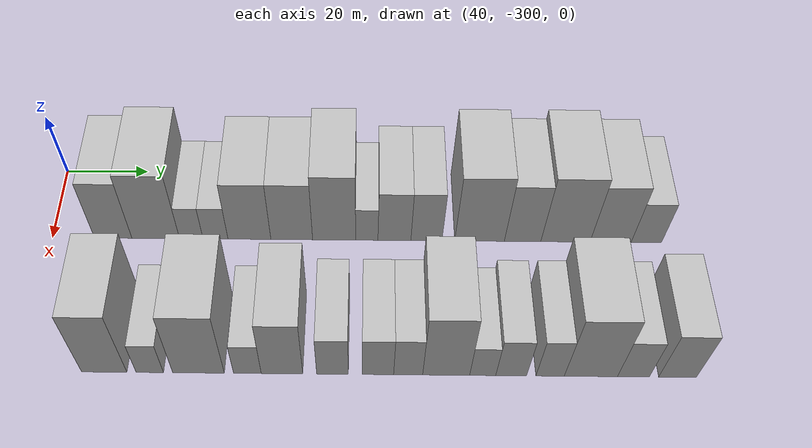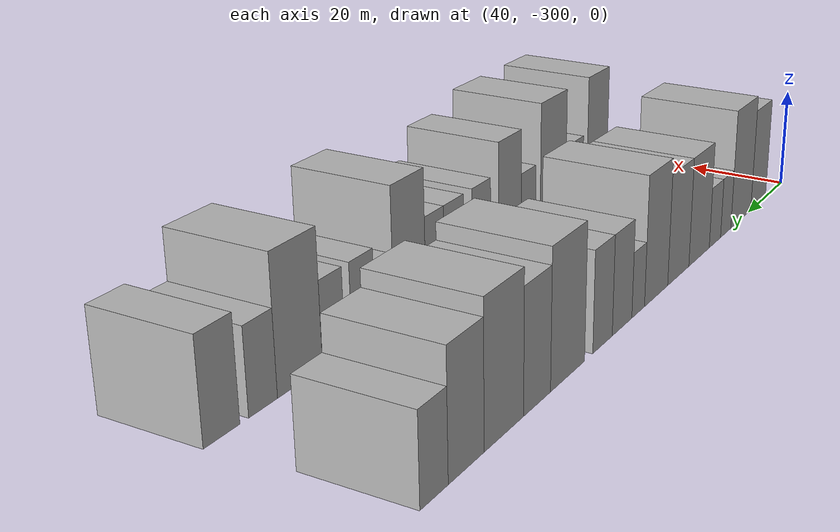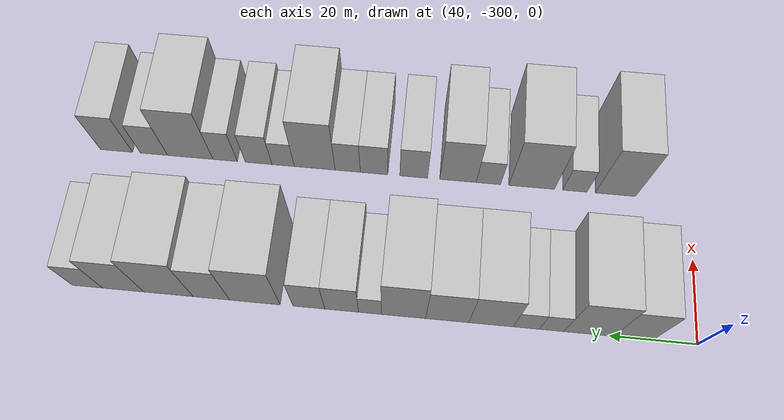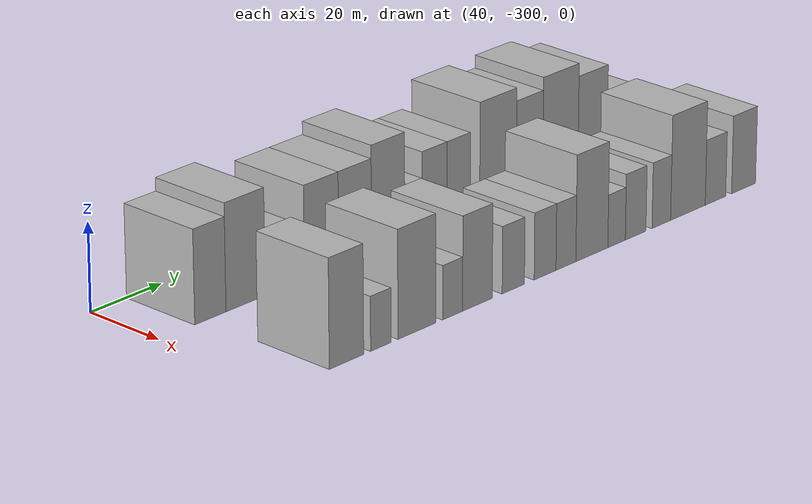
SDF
<sdf version="1.6">
 <world name="default">
  <model name="building_1">
   <static>1</static>
   <pose>50.0000 -285.5545 0 0.000000 0.000000 0.000000</pose>
   <link name="link">
    <pose>0 0 10.50 0 0 0</pose>
    <collision name="collision"><geometry><box><size>20.0000 8.8911 21.0000</size></box></geometry></collision>
    <visual name="visual">
     <cast_shadows>0</cast_shadows>
     <geometry><box><size>20.0000 8.8911 21.0000</size></box></geometry>
     <material>
      <script>
       <uri>model://HANNAS_wall/materials/scripts</uri>
       <uri>model://HANNAS_wall/materials/textures</uri>
       <name>vrc/HANNAS_wall</name>
      </script>
     </material>
    </visual>
   </link>
  </model>
  <model name="building_2">
   <static>1</static>
   <pose>50.0000 -275.4508 0 0.000000 0.000000 0.000000</pose>
   <link name="link">
    <pose>0 0 12.00 0 0 0</pose>
    <collision name="collision"><geometry><box><size>20.0000 11.3163 24.0000</size></box></geometry></collision>
    <visual name="visual">
     <cast_shadows>0</cast_shadows>
     <geometry><box><size>20.0000 11.3163 24.0000</size></box></geometry>
     <material>
      <script>
       <uri>model://HANNAS_wall/materials/scripts</uri>
       <uri>model://HANNAS_wall/materials/textures</uri>
       <name>vrc/HANNAS_wall</name>
      </script>
     </material>
    </visual>
   </link>
  </model>
  <model name="building_3">
   <static>1</static>
   <pose>50.0000 -267.0089 0 0.000000 0.000000 0.000000</pose>
   <link name="link">
    <pose>0 0 6.00 0 0 0</pose>
    <collision name="collision"><geometry><box><size>20.0000 5.5675 12.0000</size></box></geometry></collision>
    <visual name="visual">
     <cast_shadows>0</cast_shadows>
     <geometry><box><size>20.0000 5.5675 12.0000</size></box></geometry>
     <material>
      <script>
       <uri>model://HANNAS_wall/materials/scripts</uri>
       <uri>model://HANNAS_wall/materials/textures</uri>
       <name>vrc/HANNAS_wall</name>
      </script>
     </material>
    </visual>
   </link>
  </model>
  <model name="building_4">
   <static>1</static>
   <pose>50.0000 -261.2701 0 0.000000 0.000000 0.000000</pose>
   <link name="link">
    <pose>0 0 6.00 0 0 0</pose>
    <collision name="collision"><geometry><box><size>20.0000 5.9101 12.0000</size></box></geometry></collision>
    <visual name="visual">
     <cast_shadows>0</cast_shadows>
     <geometry><box><size>20.0000 5.9101 12.0000</size></box></geometry>
     <material>
      <script>
       <uri>model://HANNAS_wall/materials/scripts</uri>
       <uri>model://HANNAS_wall/materials/textures</uri>
       <name>vrc/HANNAS_wall</name>
      </script>
     </material>
    </visual>
   </link>
  </model>
  <model name="building_5">
   <static>1</static>
   <pose>50.0000 -253.2307 0 0.000000 0.000000 0.000000</pose>
   <link name="link">
    <pose>0 0 10.50 0 0 0</pose>
    <collision name="collision"><geometry><box><size>20.0000 10.1686 21.0000</size></box></geometry></collision>
    <visual name="visual">
     <cast_shadows>0</cast_shadows>
     <geometry><box><size>20.0000 10.1686 21.0000</size></box></geometry>
     <material>
      <script>
       <uri>model://HANNAS_wall/materials/scripts</uri>
       <uri>model://HANNAS_wall/materials/textures</uri>
       <name>vrc/HANNAS_wall</name>
      </script>
     </material>
    </visual>
   </link>
  </model>
  <model name="building_6">
   <static>1</static>
   <pose>50.0000 -243.1957 0 0.000000 0.000000 0.000000</pose>
   <link name="link">
    <pose>0 0 10.50 0 0 0</pose>
    <collision name="collision"><geometry><box><size>20.0000 9.9014 21.0000</size></box></geometry></collision>
    <visual name="visual">
     <cast_shadows>0</cast_shadows>
     <geometry><box><size>20.0000 9.9014 21.0000</size></box></geometry>
     <material>
      <script>
       <uri>model://HANNAS_wall/materials/scripts</uri>
       <uri>model://HANNAS_wall/materials/textures</uri>
       <name>vrc/HANNAS_wall</name>
      </script>
     </material>
    </visual>
   </link>
  </model>
  <model name="building_7">
   <static>1</static>
   <pose>50.0000 -233.1583 0 0.000000 0.000000 0.000000</pose>
   <link name="link">
    <pose>0 0 12.00 0 0 0</pose>
    <collision name="collision"><geometry><box><size>20.0000 10.1734 24.0000</size></box></geometry></collision>
    <visual name="visual">
     <cast_shadows>0</cast_shadows>
     <geometry><box><size>20.0000 10.1734 24.0000</size></box></geometry>
     <material>
      <script>
       <uri>model://HANNAS_wall/materials/scripts</uri>
       <uri>model://HANNAS_wall/materials/textures</uri>
       <name>vrc/HANNAS_wall</name>
      </script>
     </material>
    </visual>
   </link>
  </model>
  <model name="building_8">
   <static>1</static>
   <pose>50.0000 -225.4317 0 0.000000 0.000000 0.000000</pose>
   <link name="link">
    <pose>0 0 6.00 0 0 0</pose>
    <collision name="collision"><geometry><box><size>20.0000 5.2798 12.0000</size></box></geometry></collision>
    <visual name="visual">
     <cast_shadows>0</cast_shadows>
     <geometry><box><size>20.0000 5.2798 12.0000</size></box></geometry>
     <material>
      <script>
       <uri>model://HANNAS_wall/materials/scripts</uri>
       <uri>model://HANNAS_wall/materials/textures</uri>
       <name>vrc/HANNAS_wall</name>
      </script>
     </material>
    </visual>
   </link>
  </model>
  <model name="building_9">
   <static>1</static>
   <pose>50.0000 -218.8903 0 0.000000 0.000000 0.000000</pose>
   <link name="link">
    <pose>0 0 9.00 0 0 0</pose>
    <collision name="collision"><geometry><box><size>20.0000 7.8029 18.0000</size></box></geometry></collision>
    <visual name="visual">
     <cast_shadows>0</cast_shadows>
     <geometry><box><size>20.0000 7.8029 18.0000</size></box></geometry>
     <material>
      <script>
       <uri>model://HANNAS_wall/materials/scripts</uri>
       <uri>model://HANNAS_wall/materials/textures</uri>
       <name>vrc/HANNAS_wall</name>
      </script>
     </material>
    </visual>
   </link>
  </model>
  <model name="building_10">
   <static>1</static>
   <pose>50.0000 -211.3066 0 0.000000 0.000000 0.000000</pose>
   <link name="link">
    <pose>0 0 9.00 0 0 0</pose>
    <collision name="collision"><geometry><box><size>20.0000 7.3646 18.0000</size></box></geometry></collision>
    <visual name="visual">
     <cast_shadows>0</cast_shadows>
     <geometry><box><size>20.0000 7.3646 18.0000</size></box></geometry>
     <material>
      <script>
       <uri>model://HANNAS_wall/materials/scripts</uri>
       <uri>model://HANNAS_wall/materials/textures</uri>
       <name>vrc/HANNAS_wall</name>
      </script>
     </material>
    </visual>
   </link>
  </model>
  <model name="building_11">
   <static>1</static>
   <pose>50.0000 -198.7508 0 0.000000 0.000000 0.000000</pose>
   <link name="link">
    <pose>0 0 12.00 0 0 0</pose>
    <collision name="collision"><geometry><box><size>20.0000 11.7470 24.0000</size></box></geometry></collision>
    <visual name="visual">
     <cast_shadows>0</cast_shadows>
     <geometry><box><size>20.0000 11.7470 24.0000</size></box></geometry>
     <material>
      <script>
       <uri>model://HANNAS_wall/materials/scripts</uri>
       <uri>model://HANNAS_wall/materials/textures</uri>
       <name>vrc/HANNAS_wall</name>
      </script>
     </material>
    </visual>
   </link>
  </model>
  <model name="building_12">
   <static>1</static>
   <pose>50.0000 -188.5699 0 0.000000 0.000000 0.000000</pose>
   <link name="link">
    <pose>0 0 10.50 0 0 0</pose>
    <collision name="collision"><geometry><box><size>20.0000 8.6148 21.0000</size></box></geometry></collision>
    <visual name="visual">
     <cast_shadows>0</cast_shadows>
     <geometry><box><size>20.0000 8.6148 21.0000</size></box></geometry>
     <material>
      <script>
       <uri>model://HANNAS_wall/materials/scripts</uri>
       <uri>model://HANNAS_wall/materials/textures</uri>
       <name>vrc/HANNAS_wall</name>
      </script>
     </material>
    </visual>
   </link>
  </model>
  <model name="building_13">
   <static>1</static>
   <pose>50.0000 -178.4441 0 0.000000 0.000000 0.000000</pose>
   <link name="link">
    <pose>0 0 12.00 0 0 0</pose>
    <collision name="collision"><geometry><box><size>20.0000 11.6368 24.0000</size></box></geometry></collision>
    <visual name="visual">
     <cast_shadows>0</cast_shadows>
     <geometry><box><size>20.0000 11.6368 24.0000</size></box></geometry>
     <material>
      <script>
       <uri>model://HANNAS_wall/materials/scripts</uri>
       <uri>model://HANNAS_wall/materials/textures</uri>
       <name>vrc/HANNAS_wall</name>
      </script>
     </material>
    </visual>
   </link>
  </model>
  <model name="building_14">
   <static>1</static>
   <pose>50.0000 -167.7657 0 0.000000 0.000000 0.000000</pose>
   <link name="link">
    <pose>0 0 10.50 0 0 0</pose>
    <collision name="collision"><geometry><box><size>20.0000 9.7201 21.0000</size></box></geometry></collision>
    <visual name="visual">
     <cast_shadows>0</cast_shadows>
     <geometry><box><size>20.0000 9.7201 21.0000</size></box></geometry>
     <material>
      <script>
       <uri>model://HANNAS_wall/materials/scripts</uri>
       <uri>model://HANNAS_wall/materials/textures</uri>
       <name>vrc/HANNAS_wall</name>
      </script>
     </material>
    </visual>
   </link>
  </model>
  <model name="building_15">
   <static>1</static>
   <pose>50.0000 -159.3174 0 0.000000 0.000000 0.000000</pose>
   <link name="link">
    <pose>0 0 7.50 0 0 0</pose>
    <collision name="collision"><geometry><box><size>20.0000 7.1764 15.0000</size></box></geometry></collision>
    <visual name="visual">
     <cast_shadows>0</cast_shadows>
     <geometry><box><size>20.0000 7.1764 15.0000</size></box></geometry>
     <material>
      <script>
       <uri>model://HANNAS_wall/materials/scripts</uri>
       <uri>model://HANNAS_wall/materials/textures</uri>
       <name>vrc/HANNAS_wall</name>
      </script>
     </material>
    </visual>
   </link>
  </model>
  <model name="building_61">
   <static>1</static>
   <pose>85.0000 -282.0851 0 0.000000 0.000000 0.000000</pose>
   <link name="link">
    <pose>0 0 12.00 0 0 0</pose>
    <collision name="collision"><geometry><box><size>20.0000 9.8299 24.0000</size></box></geometry></collision>
    <visual name="visual">
     <cast_shadows>0</cast_shadows>
     <geometry><box><size>20.0000 9.8299 24.0000</size></box></geometry>
     <material>
      <script>
       <uri>model://HANNAS_wall/materials/scripts</uri>
       <uri>model://HANNAS_wall/materials/textures</uri>
       <name>vrc/HANNAS_wall</name>
      </script>
     </material>
    </visual>
   </link>
  </model>
  <model name="building_62">
   <static>1</static>
   <pose>85.0000 -272.2041 0 0.000000 0.000000 0.000000</pose>
   <link name="link">
    <pose>0 0 6.00 0 0 0</pose>
    <collision name="collision"><geometry><box><size>20.0000 5.9321 12.0000</size></box></geometry></collision>
    <visual name="visual">
     <cast_shadows>0</cast_shadows>
     <geometry><box><size>20.0000 5.9321 12.0000</size></box></geometry>
     <material>
      <script>
       <uri>model://HANNAS_wall/materials/scripts</uri>
       <uri>model://HANNAS_wall/materials/textures</uri>
       <name>vrc/HANNAS_wall</name>
      </script>
     </material>
    </visual>
   </link>
  </model>
  <model name="building_63">
   <static>1</static>
   <pose>85.0000 -261.6456 0 0.000000 0.000000 0.000000</pose>
   <link name="link">
    <pose>0 0 12.00 0 0 0</pose>
    <collision name="collision"><geometry><box><size>20.0000 11.1849 24.0000</size></box></geometry></collision>
    <visual name="visual">
     <cast_shadows>0</cast_shadows>
     <geometry><box><size>20.0000 11.1849 24.0000</size></box></geometry>
     <material>
      <script>
       <uri>model://HANNAS_wall/materials/scripts</uri>
       <uri>model://HANNAS_wall/materials/textures</uri>
       <name>vrc/HANNAS_wall</name>
      </script>
     </material>
    </visual>
   </link>
  </model>
  <model name="building_64">
   <static>1</static>
   <pose>85.0000 -251.0568 0 0.000000 0.000000 0.000000</pose>
   <link name="link">
    <pose>0 0 6.00 0 0 0</pose>
    <collision name="collision"><geometry><box><size>20.0000 5.9927 12.0000</size></box></geometry></collision>
    <visual name="visual">
     <cast_shadows>0</cast_shadows>
     <geometry><box><size>20.0000 5.9927 12.0000</size></box></geometry>
     <material>
      <script>
       <uri>model://HANNAS_wall/materials/scripts</uri>
       <uri>model://HANNAS_wall/materials/textures</uri>
       <name>vrc/HANNAS_wall</name>
      </script>
     </material>
    </visual>
   </link>
  </model>
  <model name="building_65">
   <static>1</static>
   <pose>85.0000 -243.5654 0 0.000000 0.000000 0.000000</pose>
   <link name="link">
    <pose>0 0 10.50 0 0 0</pose>
    <collision name="collision"><geometry><box><size>20.0000 8.9899 21.0000</size></box></geometry></collision>
    <visual name="visual">
     <cast_shadows>0</cast_shadows>
     <geometry><box><size>20.0000 8.9899 21.0000</size></box></geometry>
     <material>
      <script>
       <uri>model://HANNAS_wall/materials/scripts</uri>
       <uri>model://HANNAS_wall/materials/textures</uri>
       <name>vrc/HANNAS_wall</name>
      </script>
     </material>
    </visual>
   </link>
  </model>
  <model name="building_66">
   <static>1</static>
   <pose>85.0000 -232.6446 0 0.000000 0.000000 0.000000</pose>
   <link name="link">
    <pose>0 0 7.50 0 0 0</pose>
    <collision name="collision"><geometry><box><size>20.0000 6.8518 15.0000</size></box></geometry></collision>
    <visual name="visual">
     <cast_shadows>0</cast_shadows>
     <geometry><box><size>20.0000 6.8518 15.0000</size></box></geometry>
     <material>
      <script>
       <uri>model://HANNAS_wall/materials/scripts</uri>
       <uri>model://HANNAS_wall/materials/textures</uri>
       <name>vrc/HANNAS_wall</name>
      </script>
     </material>
    </visual>
   </link>
  </model>
  <model name="building_67">
   <static>1</static>
   <pose>85.0000 -222.8198 0 0.000000 0.000000 0.000000</pose>
   <link name="link">
    <pose>0 0 7.50 0 0 0</pose>
    <collision name="collision"><geometry><box><size>20.0000 6.7977 15.0000</size></box></geometry></collision>
    <visual name="visual">
     <cast_shadows>0</cast_shadows>
     <geometry><box><size>20.0000 6.7977 15.0000</size></box></geometry>
     <material>
      <script>
       <uri>model://HANNAS_wall/materials/scripts</uri>
       <uri>model://HANNAS_wall/materials/textures</uri>
       <name>vrc/HANNAS_wall</name>
      </script>
     </material>
    </visual>
   </link>
  </model>
  <model name="building_68">
   <static>1</static>
   <pose>85.0000 -216.2872 0 0.000000 0.000000 0.000000</pose>
   <link name="link">
    <pose>0 0 7.50 0 0 0</pose>
    <collision name="collision"><geometry><box><size>20.0000 6.2676 15.0000</size></box></geometry></collision>
    <visual name="visual">
     <cast_shadows>0</cast_shadows>
     <geometry><box><size>20.0000 6.2676 15.0000</size></box></geometry>
     <material>
      <script>
       <uri>model://HANNAS_wall/materials/scripts</uri>
       <uri>model://HANNAS_wall/materials/textures</uri>
       <name>vrc/HANNAS_wall</name>
      </script>
     </material>
    </visual>
   </link>
  </model>
  <model name="building_69">
   <static>1</static>
   <pose>85.0000 -208.0695 0 0.000000 0.000000 0.000000</pose>
   <link name="link">
    <pose>0 0 12.00 0 0 0</pose>
    <collision name="collision"><geometry><box><size>20.0000 10.1677 24.0000</size></box></geometry></collision>
    <visual name="visual">
     <cast_shadows>0</cast_shadows>
     <geometry><box><size>20.0000 10.1677 24.0000</size></box></geometry>
     <material>
      <script>
       <uri>model://HANNAS_wall/materials/scripts</uri>
       <uri>model://HANNAS_wall/materials/textures</uri>
       <name>vrc/HANNAS_wall</name>
      </script>
     </material>
    </visual>
   </link>
  </model>
  <model name="building_70">
   <static>1</static>
   <pose>85.0000 -200.1742 0 0.000000 0.000000 0.000000</pose>
   <link name="link">
    <pose>0 0 6.00 0 0 0</pose>
    <collision name="collision"><geometry><box><size>20.0000 5.6231 12.0000</size></box></geometry></collision>
    <visual name="visual">
     <cast_shadows>0</cast_shadows>
     <geometry><box><size>20.0000 5.6231 12.0000</size></box></geometry>
     <material>
      <script>
       <uri>model://HANNAS_wall/materials/scripts</uri>
       <uri>model://HANNAS_wall/materials/textures</uri>
       <name>vrc/HANNAS_wall</name>
      </script>
     </material>
    </visual>
   </link>
  </model>
  <model name="building_71">
   <static>1</static>
   <pose>85.0000 -194.0202 0 0.000000 0.000000 0.000000</pose>
   <link name="link">
    <pose>0 0 7.50 0 0 0</pose>
    <collision name="collision"><geometry><box><size>20.0000 6.6849 15.0000</size></box></geometry></collision>
    <visual name="visual">
     <cast_shadows>0</cast_shadows>
     <geometry><box><size>20.0000 6.6849 15.0000</size></box></geometry>
     <material>
      <script>
       <uri>model://HANNAS_wall/materials/scripts</uri>
       <uri>model://HANNAS_wall/materials/textures</uri>
       <name>vrc/HANNAS_wall</name>
      </script>
     </material>
    </visual>
   </link>
  </model>
  <model name="building_72">
   <static>1</static>
   <pose>85.0000 -185.6216 0 0.000000 0.000000 0.000000</pose>
   <link name="link">
    <pose>0 0 7.50 0 0 0</pose>
    <collision name="collision"><geometry><box><size>20.0000 6.1123 15.0000</size></box></geometry></collision>
    <visual name="visual">
     <cast_shadows>0</cast_shadows>
     <geometry><box><size>20.0000 6.1123 15.0000</size></box></geometry>
     <material>
      <script>
       <uri>model://HANNAS_wall/materials/scripts</uri>
       <uri>model://HANNAS_wall/materials/textures</uri>
       <name>vrc/HANNAS_wall</name>
      </script>
     </material>
    </visual>
   </link>
  </model>
  <model name="building_73">
   <static>1</static>
   <pose>85.0000 -176.8198 0 0.000000 0.000000 0.000000</pose>
   <link name="link">
    <pose>0 0 12.00 0 0 0</pose>
    <collision name="collision"><geometry><box><size>20.0000 11.4912 24.0000</size></box></geometry></collision>
    <visual name="visual">
     <cast_shadows>0</cast_shadows>
     <geometry><box><size>20.0000 11.4912 24.0000</size></box></geometry>
     <material>
      <script>
       <uri>model://HANNAS_wall/materials/scripts</uri>
       <uri>model://HANNAS_wall/materials/textures</uri>
       <name>vrc/HANNAS_wall</name>
      </script>
     </material>
    </visual>
   </link>
  </model>
  <model name="building_74">
   <static>1</static>
   <pose>85.0000 -167.6315 0 0.000000 0.000000 0.000000</pose>
   <link name="link">
    <pose>0 0 7.50 0 0 0</pose>
    <collision name="collision"><geometry><box><size>20.0000 6.8855 15.0000</size></box></geometry></collision>
    <visual name="visual">
     <cast_shadows>0</cast_shadows>
     <geometry><box><size>20.0000 6.8855 15.0000</size></box></geometry>
     <material>
      <script>
       <uri>model://HANNAS_wall/materials/scripts</uri>
       <uri>model://HANNAS_wall/materials/textures</uri>
       <name>vrc/HANNAS_wall</name>
      </script>
     </material>
    </visual>
   </link>
  </model>
  <model name="building_75">
   <static>1</static>
   <pose>85.0000 -158.1187 0 0.000000 0.000000 0.000000</pose>
   <link name="link">
    <pose>0 0 9.00 0 0 0</pose>
    <collision name="collision"><geometry><box><size>20.0000 8.1402 18.0000</size></box></geometry></collision>
    <visual name="visual">
     <cast_shadows>0</cast_shadows>
     <geometry><box><size>20.0000 8.1402 18.0000</size></box></geometry>
     <material>
      <script>
       <uri>model://HANNAS_wall/materials/scripts</uri>
       <uri>model://HANNAS_wall/materials/textures</uri>
       <name>vrc/HANNAS_wall</name>
      </script>
     </material>
    </visual>
   </link>
  </model>
 </world>
</sdf>
